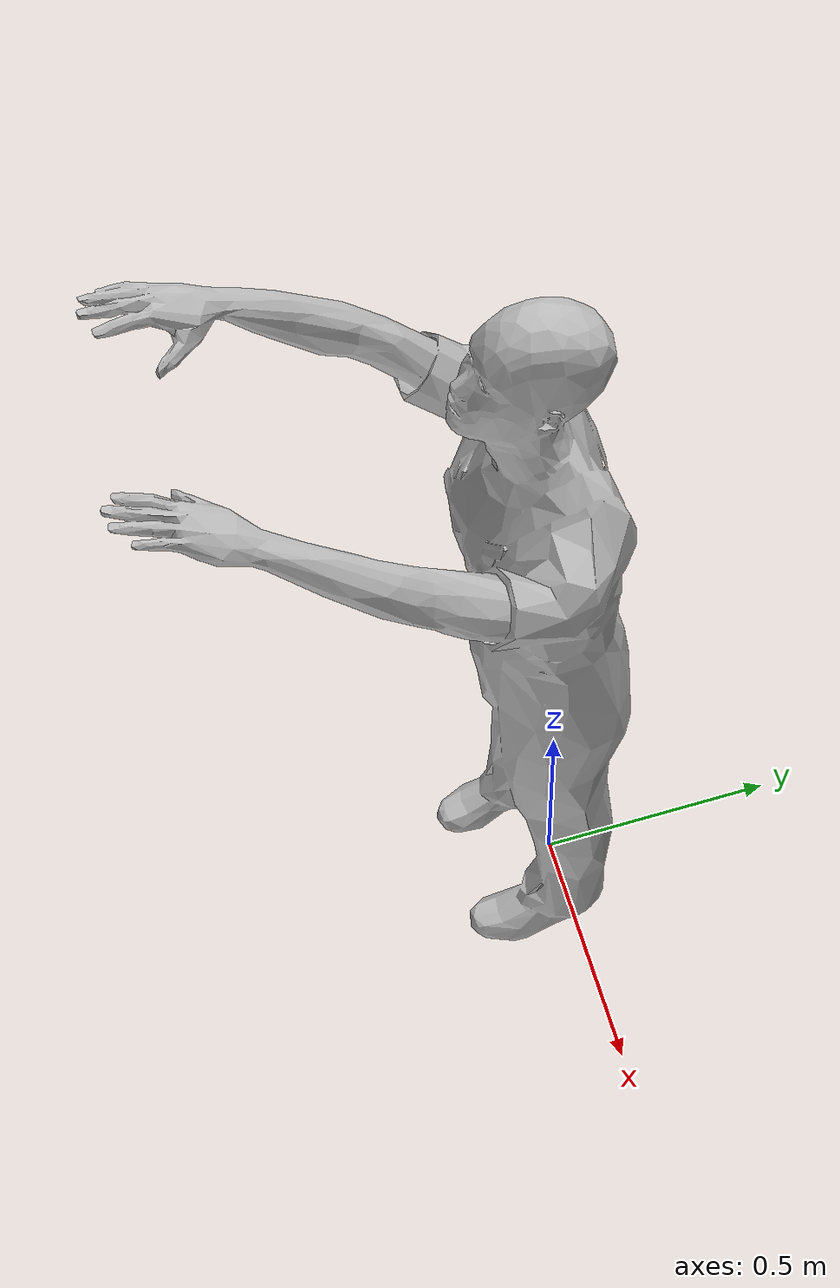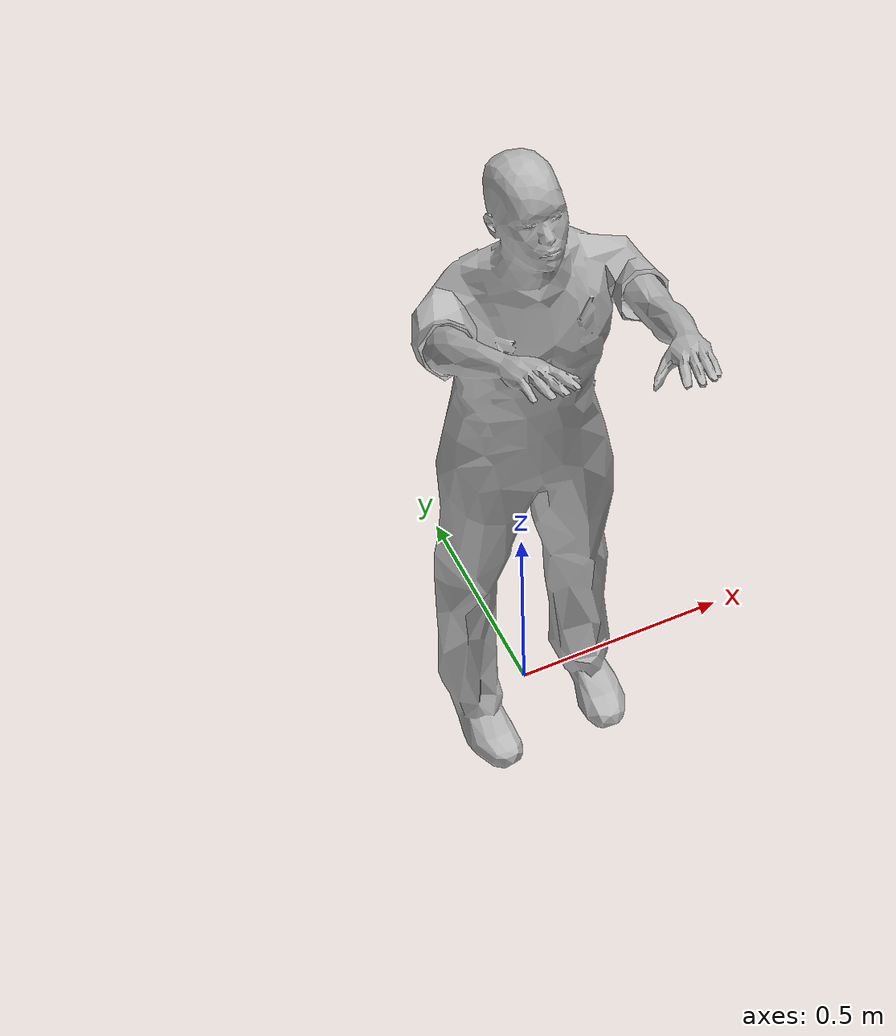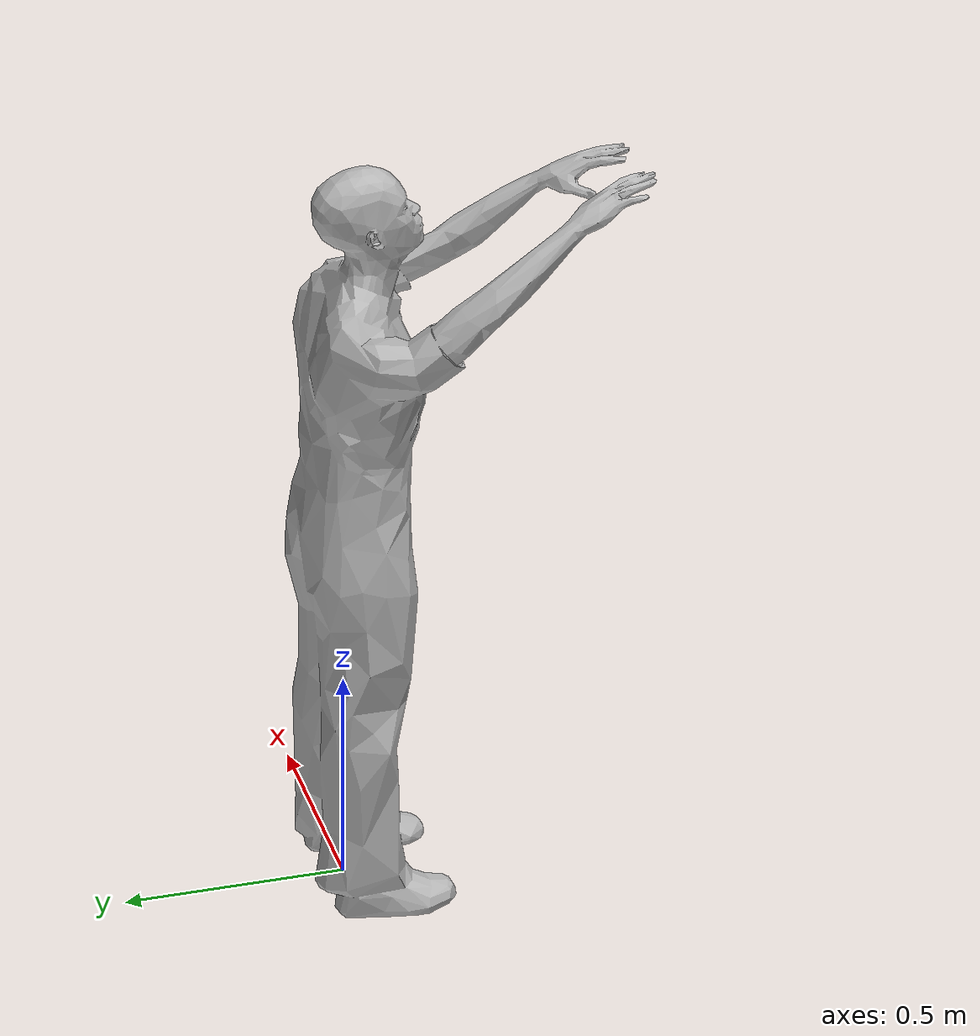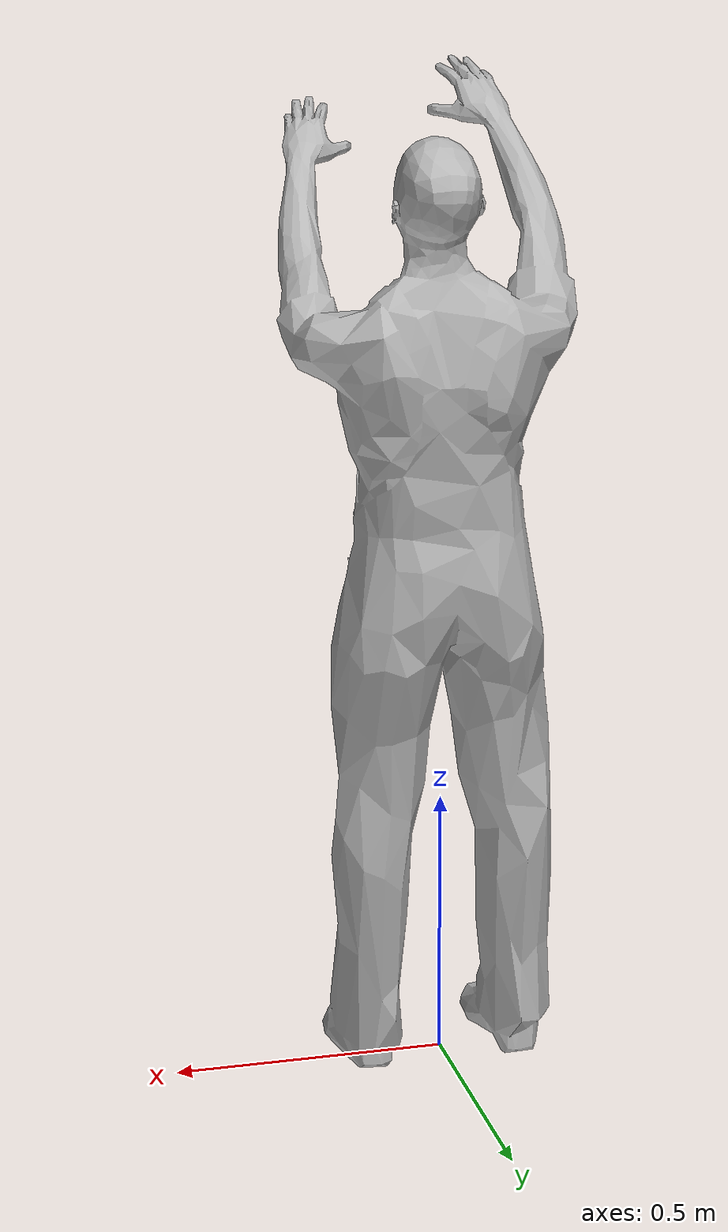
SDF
<?xml version='1.0'?>
<sdf version='1.6'>
  <model name='aws_robomaker_warehouse_HumanA2_01'>
    <link name='body'>
	  <inertial>
        <mass>70</mass>
        <pose frame=''>0 0 0 0 0 0</pose>
        <inertia>
          <ixx>21.644</ixx>
          <ixy>0</ixy>
          <ixz>0</ixz>
          <iyy>21.470</iyy>
          <iyz>0</iyz>
          <izz>6.563</izz>
        </inertia>
      </inertial>
      <pose frame=''>0 0 0 0 -0 0</pose>
      <self_collide>0</self_collide>
      <kinematic>0</kinematic>
      <gravity>1</gravity>
      <visual name='visual'>
        <geometry>
          <mesh>
            <uri>file://models/aws_robomaker_warehouse_HumanA2_01/meshes/aws_robomaker_warehouse_HumanA2_01_visual.DAE</uri>
          </mesh>
        </geometry>
		<meta> <layer> 1 </layer></meta>
      </visual>
      <collision name='collision_0'>
        <laser_retro>0</laser_retro>
        <max_contacts>10</max_contacts>
        <pose frame=''>0 0 0 0 -0 0</pose>
        <geometry>
          <mesh>
            <uri>file://models/aws_robomaker_warehouse_HumanA2_01/meshes/aws_robomaker_warehouse_HumanA2_01_collision.DAE</uri>
            <scale>1 1 1</scale>
          </mesh>
        </geometry>
      </collision>
    </link>
    <static>true</static>
  </model>
</sdf>
